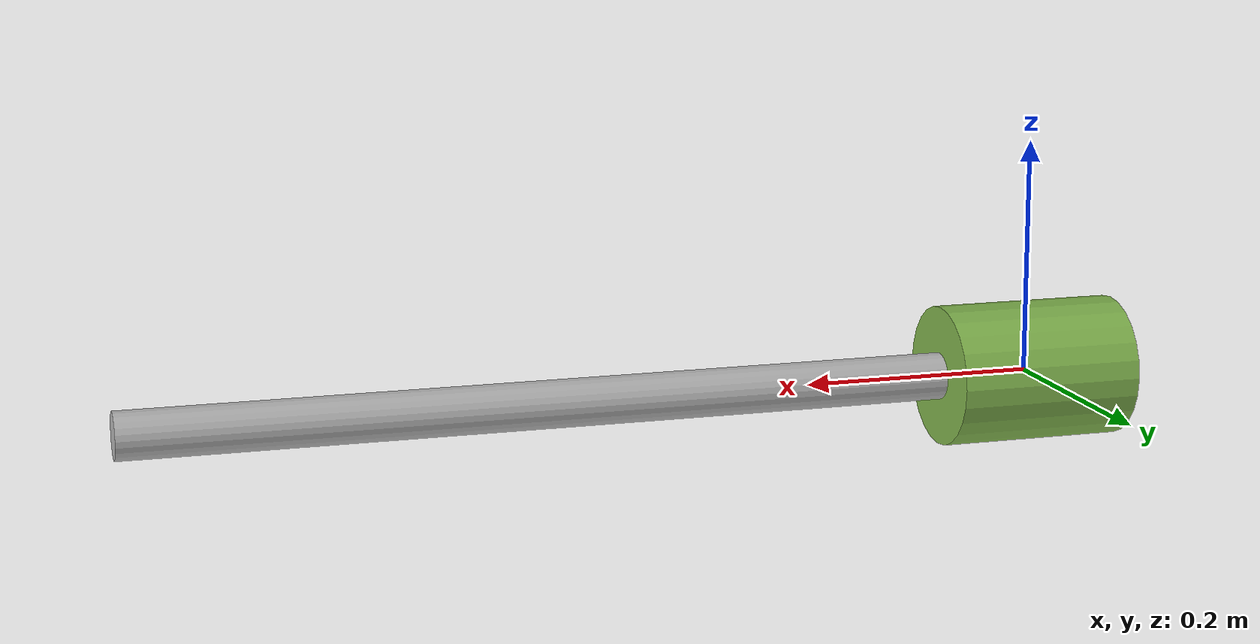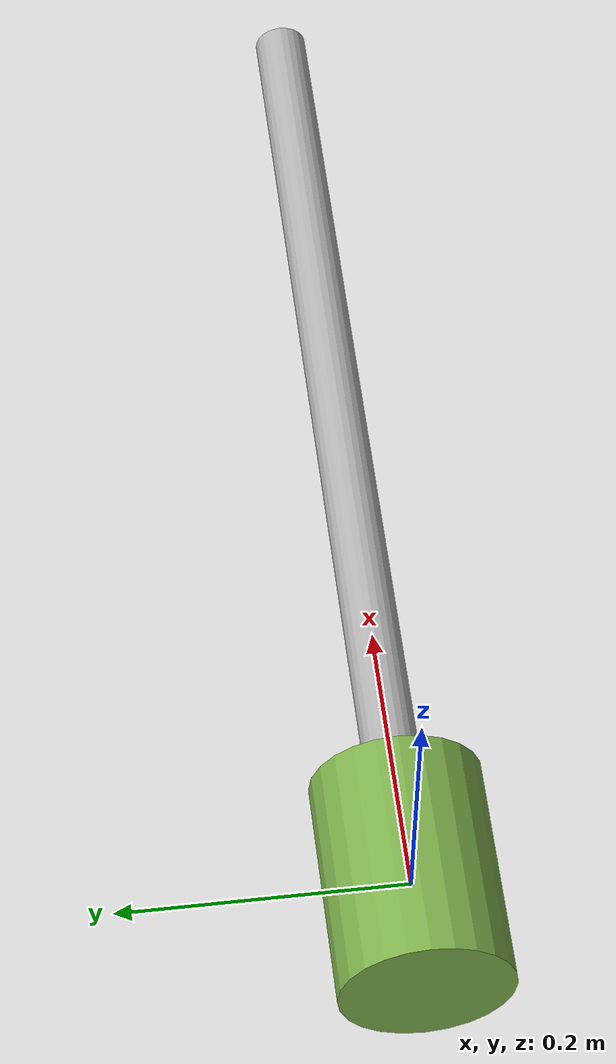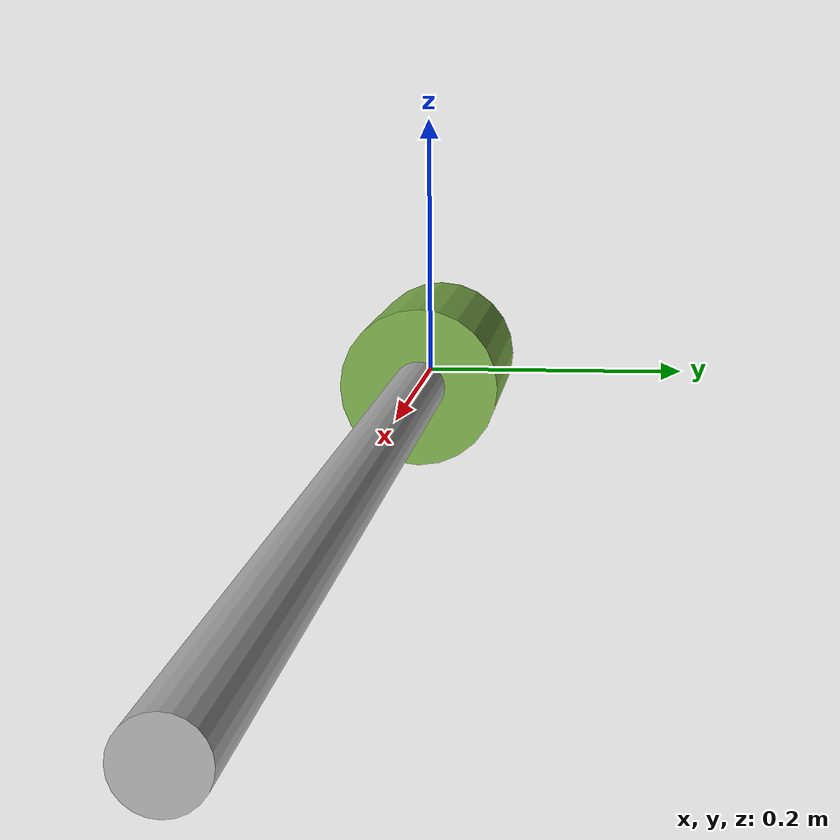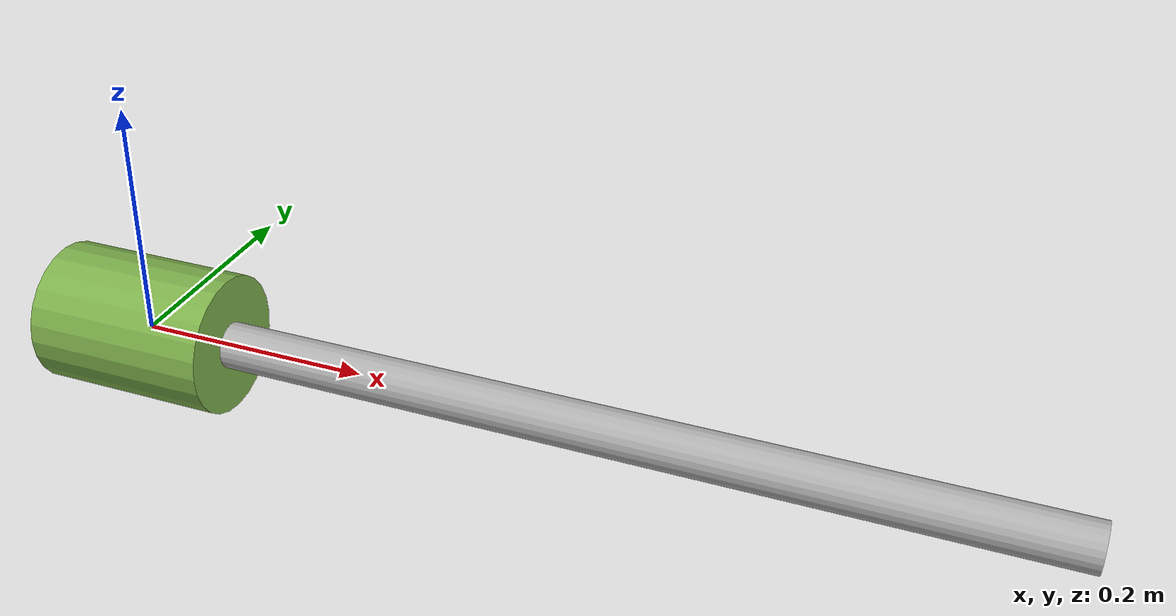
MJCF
<mujoco model="cylinder">
  <compiler angle="radian"/>
  <option gravity="0 0 0" timestep="0.001" integrator="RK4"/>

  <default>
    <geom contype="0" conaffinity="0"/>
  </default>

  <worldbody>
    <!-- Moving piston: barrel + rod (housing spawned by Bevy as hollow tube) -->
    <body name="piston" pos="0 0 0">
      <joint name="slide" type="slide" axis="1 0 0" armature="0.01"
             range="-0.25 0.25" limited="true"/>
      <inertial pos="0 0 0" mass="1.0" diaginertia="0.001 0.001 0.001"/>
      <geom name="barrel" type="cylinder" size="0.06 0.08" euler="0 1.5708 0"
            rgba="0.5 0.7 0.3 1"/>
      <geom name="rod" type="cylinder" size="0.02 0.35" pos="0.43 0 0"
            euler="0 1.5708 0" rgba="0.7 0.7 0.7 1"/>
    </body>
  </worldbody>

  <actuator>
    <cylinder name="pneumatic" joint="slide" timeconst="0.5" diameter="0.5"
              bias="0 0 -0.5" ctrlrange="-1 1" ctrllimited="false"/>
  </actuator>

  <sensor>
    <actuatorfrc name="act_force" actuator="pneumatic"/>
    <jointpos name="jpos" joint="slide"/>
    <jointvel name="jvel" joint="slide"/>
  </sensor>
</mujoco>
